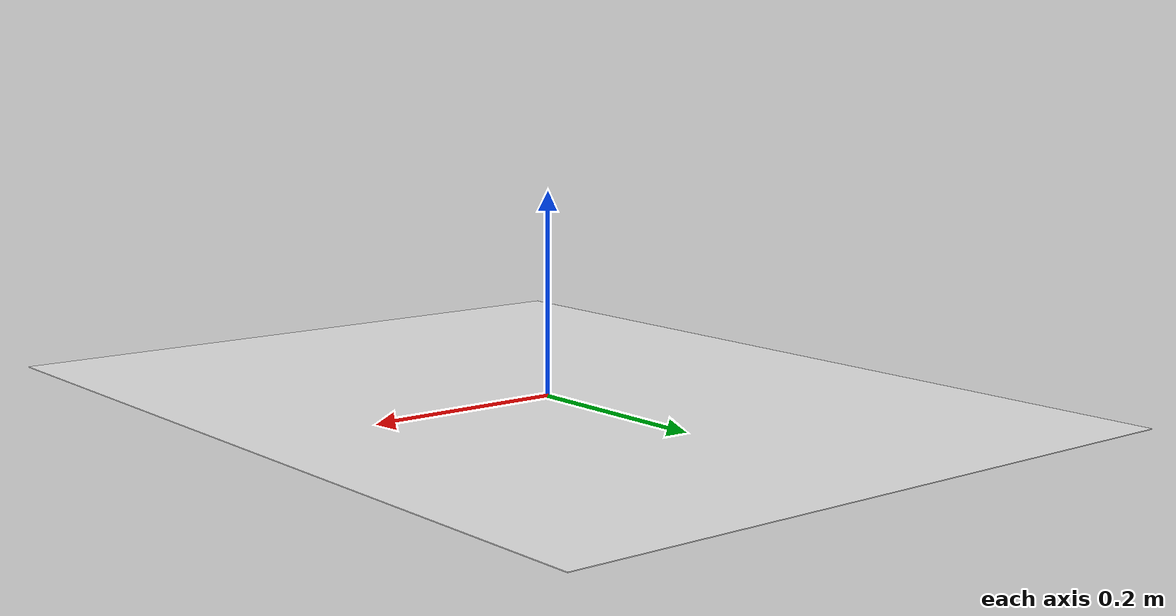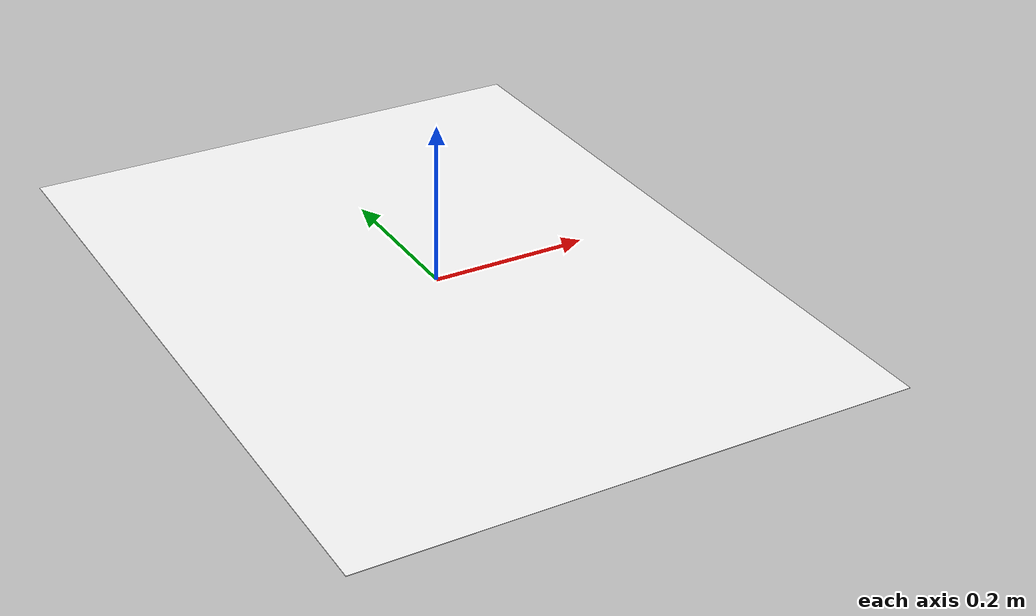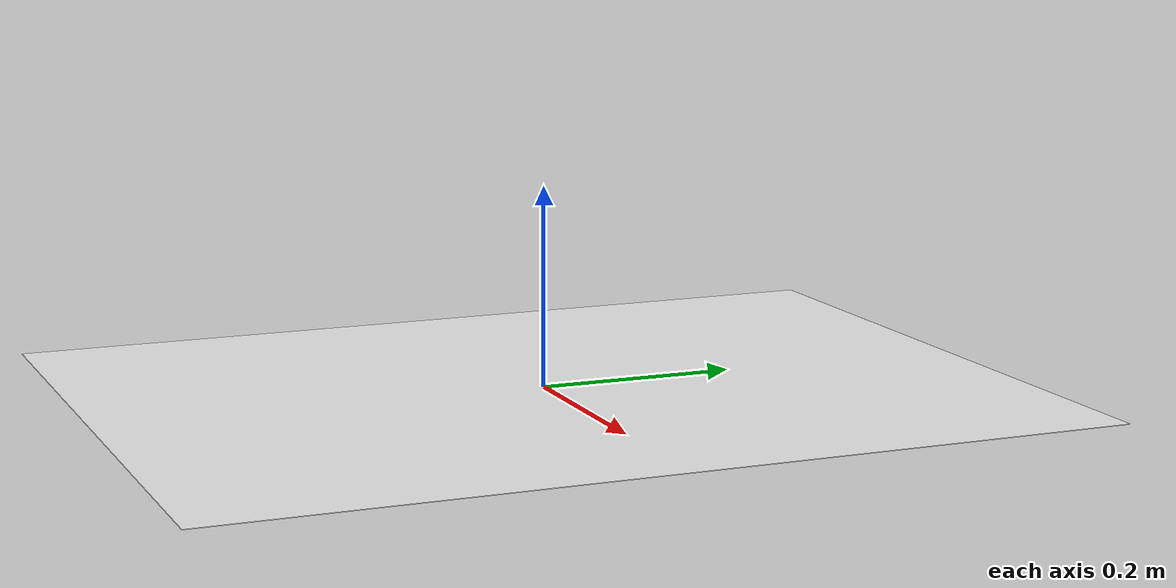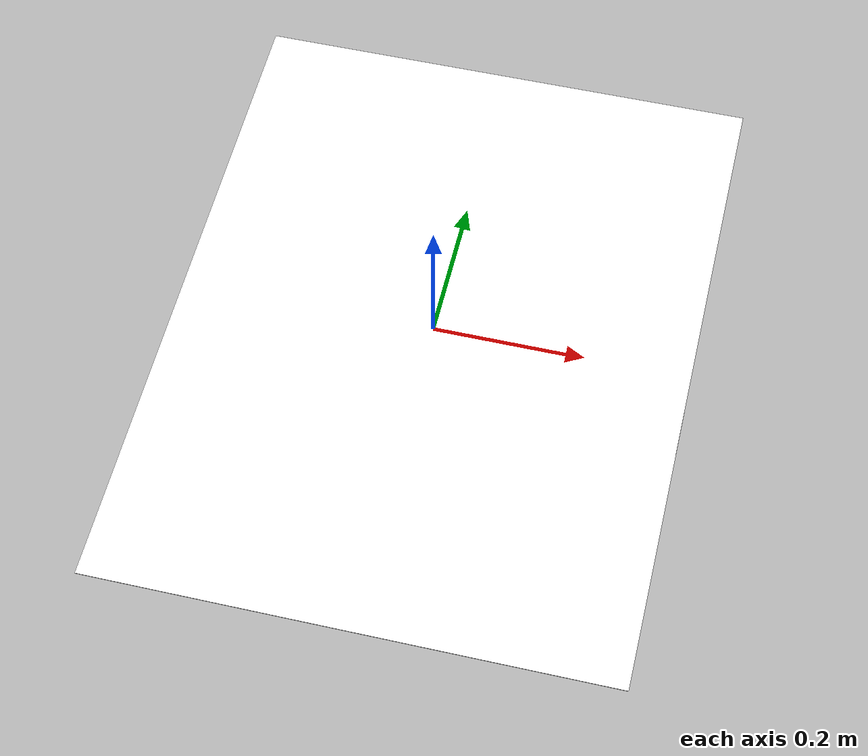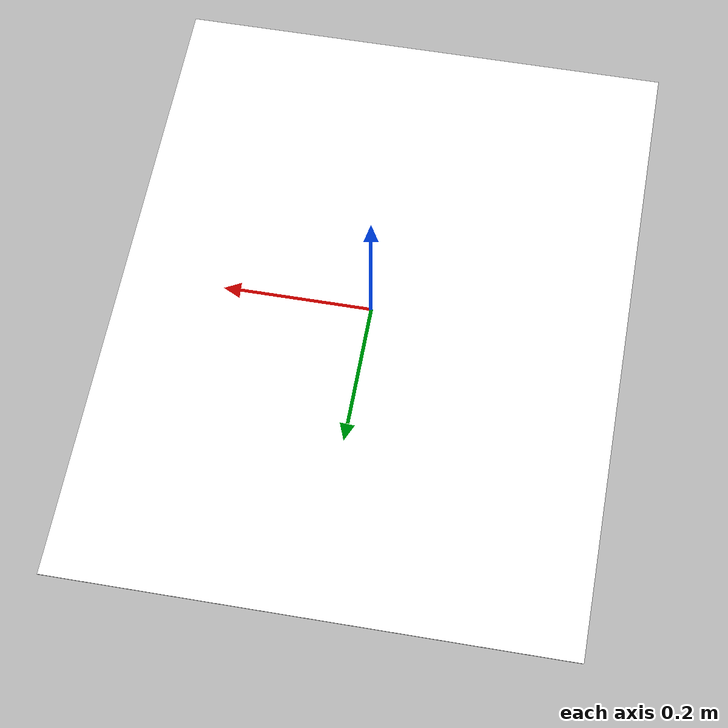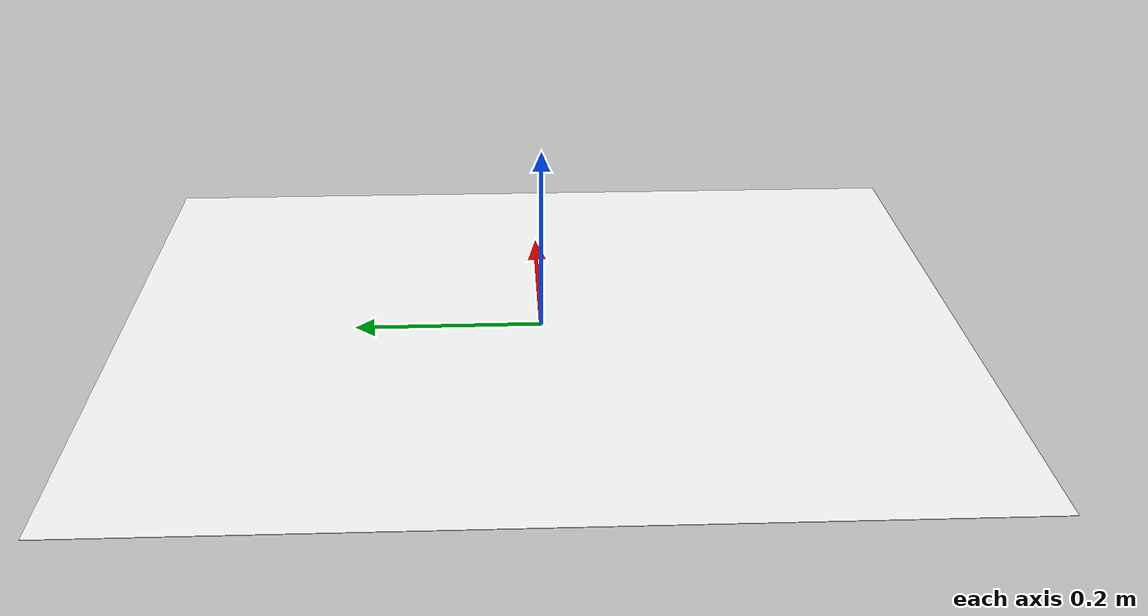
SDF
<?xml version="1.0"?>
<sdf version="1.9">
  <model name="aruco_default">
    <static>true</static>
    <link name="aruco_link">
      <visual name="aruco_visual">
        <geometry>
          <plane>
            <normal>0 0 1</normal>
            <size>0.68 0.9</size>
          </plane>
        </geometry>
        <material>
          <diffuse>1 1 1 1</diffuse>
          <specular>0.4 0.4 0.4 1</specular>
          <pbr>
            <metal>
              <albedo_map>materials/textures/pattern.png</albedo_map>
            </metal>
          </pbr>
        </material>
        <plugin filename="ignition-gazebo-thermal-system" name="ignition::gazebo::systems::Thermal">
          <heat_signature>materials/textures/pattern.png</heat_signature>
          <min_temp>273.15</min_temp>
          <max_temp>312.15</max_temp>
        </plugin>
      </visual>
    </link>
  </model>
</sdf>
